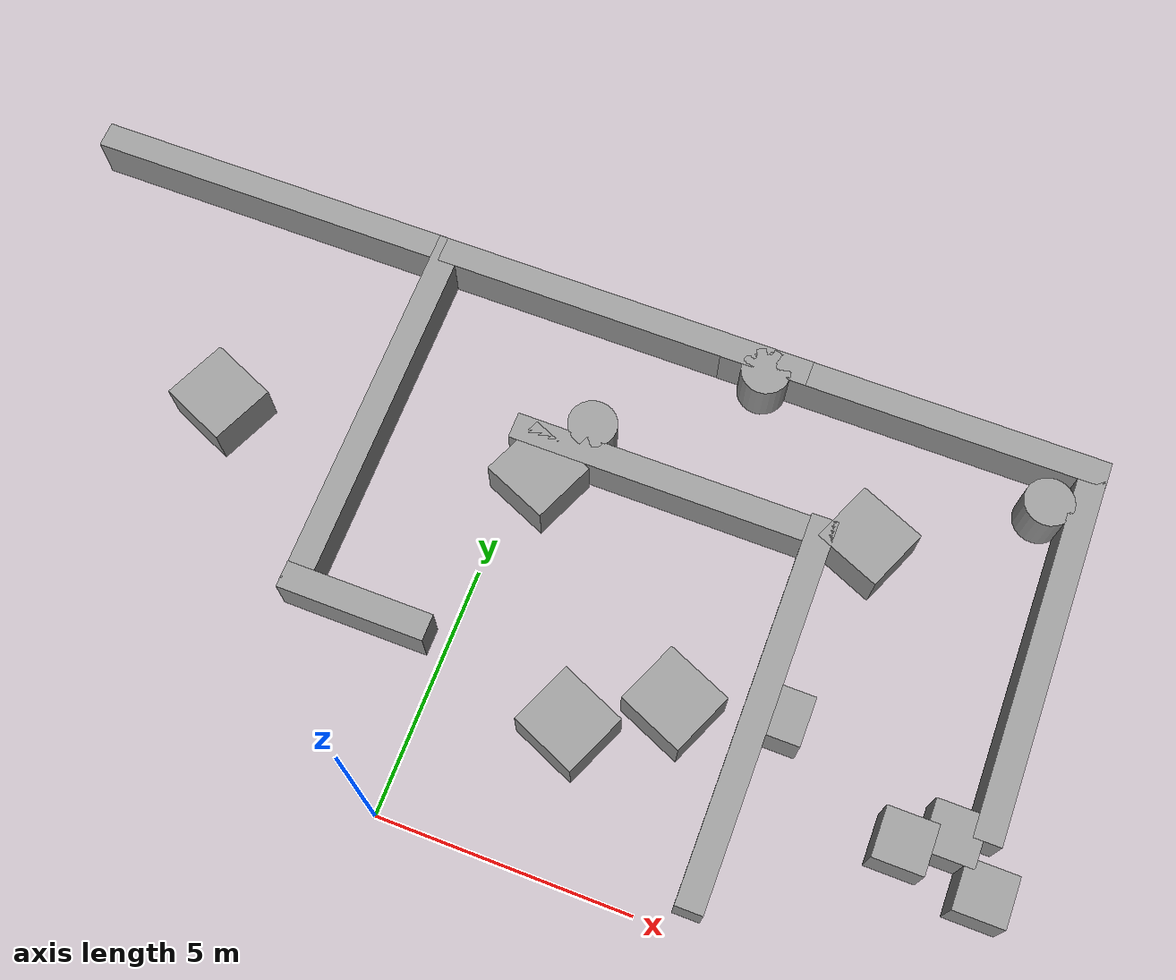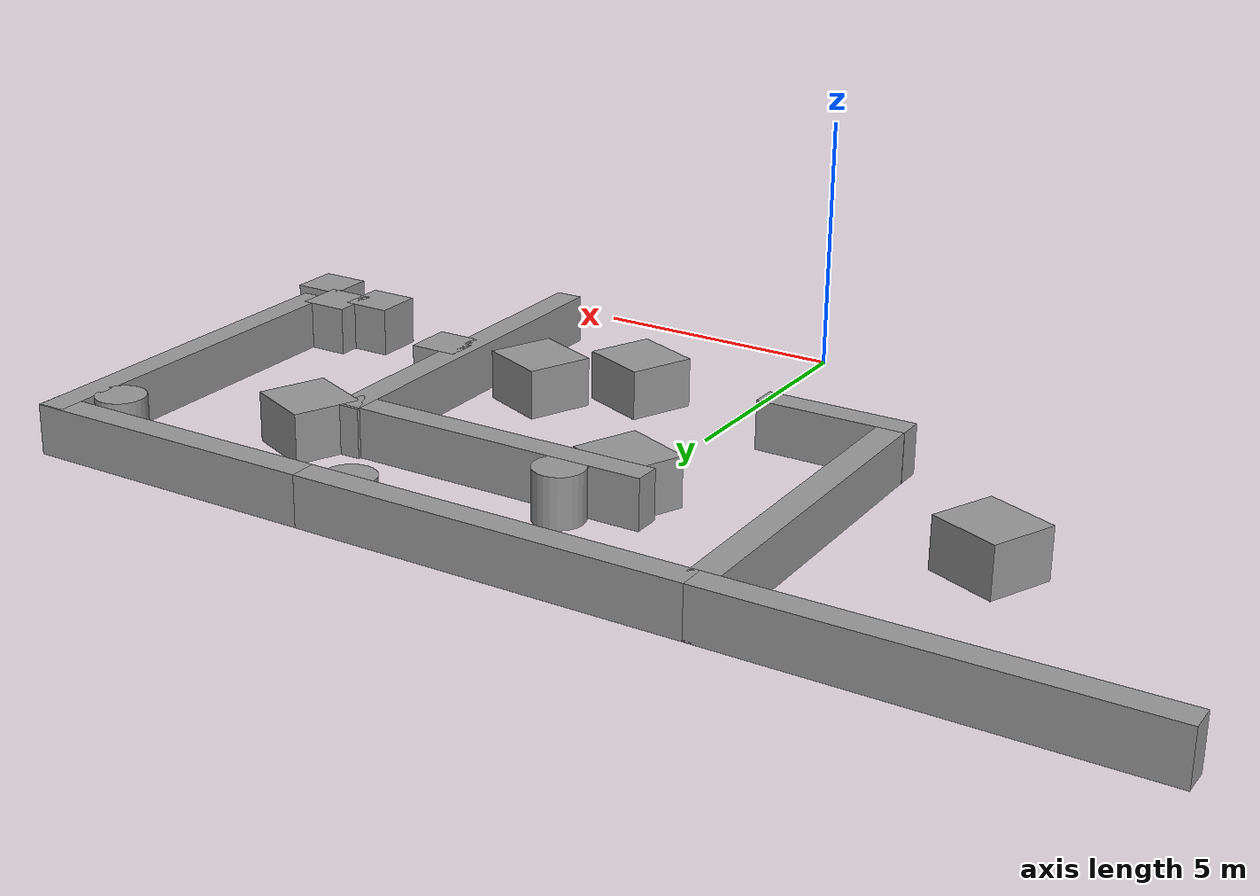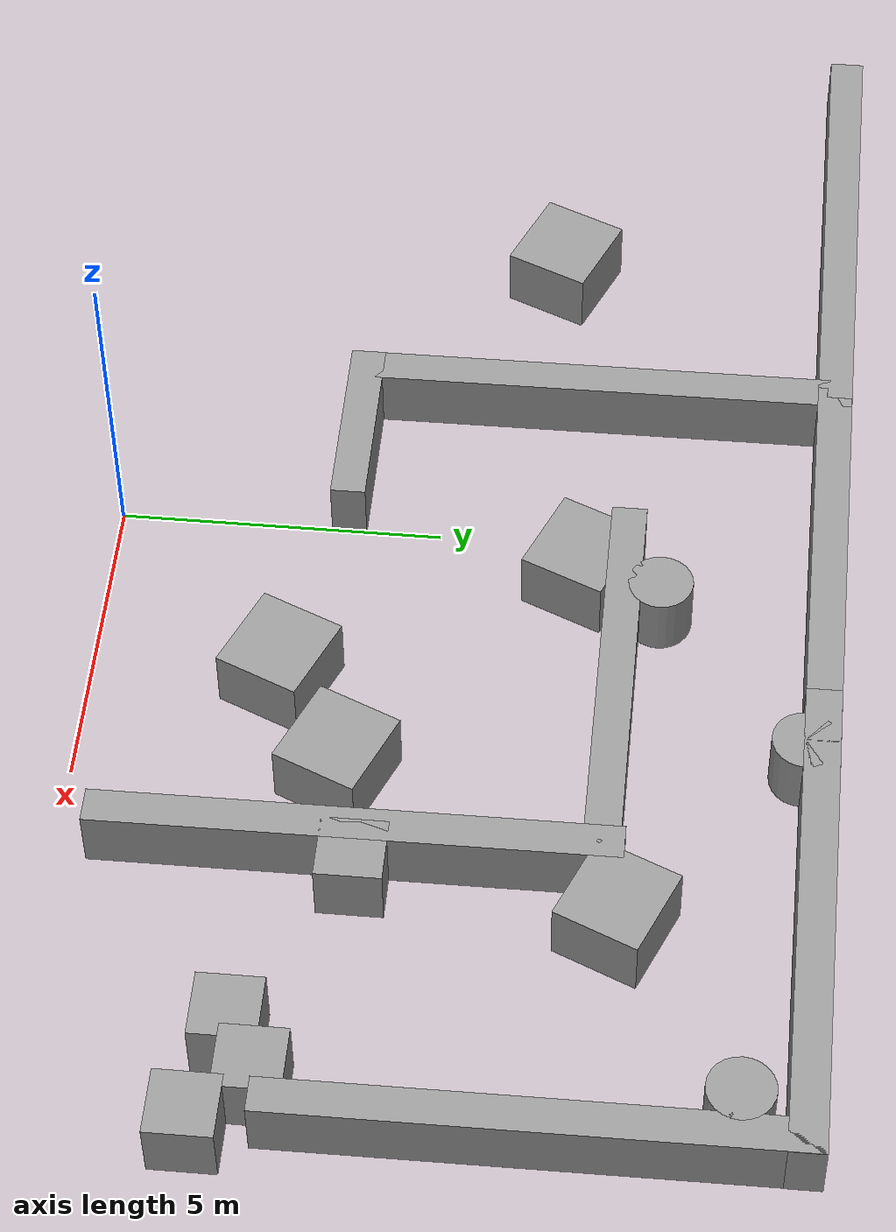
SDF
<sdf version="1.6">
 <model name="Maze01">
  <link name="link_11">
   <pose>6.31823 4.34711 9e-06 0 -0 0</pose>
   <inertial>
    <mass>1</mass>
    <inertia>
     <ixx>0.166667</ixx>
     <ixy>0</ixy>
     <ixz>0</ixz>
     <iyy>0.166667</iyy>
     <iyz>0</iyz>
     <izz>0.166667</izz>
    </inertia>
   </inertial>
   <visual name="visual">
    <geometry><box><size>1 1 1</size></box></geometry>
    <material>
     <lighting>1</lighting>
     <script><uri>file://media/materials/scripts/gazebo.material</uri><name>Gazebo/Grey</name></script>
     <ambient>0.3 0.3 0.3 1</ambient>
     <diffuse>0.7 0.7 0.7 1</diffuse>
     <specular>0.01 0.01 0.01 1</specular>
     <emissive>0 0 0 1</emissive>
    </material>
   </visual>
   <collision name="collision">
    <geometry><box><size>1 1 1</size></box></geometry>
    <surface>
     <friction>
      <ode><mu>1</mu><mu2>1</mu2><fdir1>0 0 0</fdir1><slip1>0</slip1><slip2>0</slip2></ode>
      <torsional>
       <coefficient>1</coefficient>
       <patch_radius>0</patch_radius>
       <surface_radius>0</surface_radius>
       <use_patch_radius>1</use_patch_radius>
       <ode><slip>0</slip></ode>
      </torsional>
     </friction>
     <bounce><restitution_coefficient>0</restitution_coefficient><threshold>1e+06</threshold></bounce>
     <contact>
      <collide_without_contact>0</collide_without_contact>
      <collide_without_contact_bitmask>1</collide_without_contact_bitmask>
      <collide_bitmask>1</collide_bitmask>
      <ode>
       <soft_cfm>0</soft_cfm>
       <soft_erp>0.2</soft_erp>
       <kp>1e+13</kp>
       <kd>1</kd>
       <max_vel>0.01</max_vel>
       <min_depth>0</min_depth>
      </ode>
      <bullet>
       <split_impulse>1</split_impulse>
       <split_impulse_penetration_threshold>-0.01</split_impulse_penetration_threshold>
       <soft_cfm>0</soft_cfm>
       <soft_erp>0.2</soft_erp>
       <kp>1e+13</kp>
       <kd>1</kd>
      </bullet>
     </contact>
    </surface>
   </collision>
  </link>
  <link name="link_14">
   <pose>10.7124 2.54643 9e-06 0 -0 0</pose>
   <inertial>
    <mass>1</mass>
    <inertia>
     <ixx>0.166667</ixx>
     <ixy>0</ixy>
     <ixz>0</ixz>
     <iyy>0.166667</iyy>
     <iyz>0</iyz>
     <izz>0.166667</izz>
    </inertia>
   </inertial>
   <visual name="visual">
    <geometry><box><size>1 1 1</size></box></geometry>
    <material>
     <lighting>1</lighting>
     <script><uri>file://media/materials/scripts/gazebo.material</uri><name>Gazebo/Grey</name></script>
     <ambient>0.3 0.3 0.3 1</ambient>
     <diffuse>0.7 0.7 0.7 1</diffuse>
     <specular>0.01 0.01 0.01 1</specular>
     <emissive>0 0 0 1</emissive>
    </material>
   </visual>
   <collision name="collision">
    <geometry><box><size>1 1 1</size></box></geometry>
    <surface>
     <friction>
      <ode><mu>1</mu><mu2>1</mu2><fdir1>0 0 0</fdir1><slip1>0</slip1><slip2>0</slip2></ode>
      <torsional>
       <coefficient>1</coefficient>
       <patch_radius>0</patch_radius>
       <surface_radius>0</surface_radius>
       <use_patch_radius>1</use_patch_radius>
       <ode><slip>0</slip></ode>
      </torsional>
     </friction>
     <bounce><restitution_coefficient>0</restitution_coefficient><threshold>1e+06</threshold></bounce>
     <contact>
      <collide_without_contact>0</collide_without_contact>
      <collide_without_contact_bitmask>1</collide_without_contact_bitmask>
      <collide_bitmask>1</collide_bitmask>
      <ode>
       <soft_cfm>0</soft_cfm>
       <soft_erp>0.2</soft_erp>
       <kp>1e+13</kp>
       <kd>1</kd>
       <max_vel>0.01</max_vel>
       <min_depth>0</min_depth>
      </ode>
      <bullet>
       <split_impulse>1</split_impulse>
       <split_impulse_penetration_threshold>-0.01</split_impulse_penetration_threshold>
       <soft_cfm>0</soft_cfm>
       <soft_erp>0.2</soft_erp>
       <kp>1e+13</kp>
       <kd>1</kd>
      </bullet>
     </contact>
    </surface>
   </collision>
  </link>
  <link name="link_4_clone_0_clone_clone_1_clone_0_clone_0">
   <pose>0.695253 11.0512 9e-06 0 -0 0</pose>
   <inertial>
    <mass>4.30693</mass>
    <inertia><ixx>0.46587</ixx><ixy>0</ixy><ixz>0</ixz><iyy>22.6991</iyy><iyz>0</iyz><izz>22.4471</izz></inertia>
   </inertial>
   <visual name="visual">
    <geometry><box><size>7.88951 0.545905 1</size></box></geometry>
    <material>
     <lighting>1</lighting>
     <script><uri>file://media/materials/scripts/gazebo.material</uri><name>Gazebo/Grey</name></script>
     <ambient>0.3 0.3 0.3 1</ambient>
     <diffuse>0.7 0.7 0.7 1</diffuse>
     <specular>0.01 0.01 0.01 1</specular>
     <emissive>0 0 0 1</emissive>
     <shader type="pixel"/>
    </material>
   </visual>
   <collision name="collision">
    <geometry><box><size>7.88951 0.545905 1</size></box></geometry>
    <surface>
     <friction>
      <ode><mu>1</mu><mu2>1</mu2><fdir1>0 0 0</fdir1><slip1>0</slip1><slip2>0</slip2></ode>
      <torsional>
       <coefficient>1</coefficient>
       <patch_radius>0</patch_radius>
       <surface_radius>0</surface_radius>
       <use_patch_radius>1</use_patch_radius>
       <ode><slip>0</slip></ode>
      </torsional>
     </friction>
     <bounce><restitution_coefficient>0</restitution_coefficient><threshold>1e+06</threshold></bounce>
     <contact>
      <collide_without_contact>0</collide_without_contact>
      <collide_without_contact_bitmask>1</collide_without_contact_bitmask>
      <collide_bitmask>1</collide_bitmask>
      <ode>
       <soft_cfm>0</soft_cfm>
       <soft_erp>0.2</soft_erp>
       <kp>1e+13</kp>
       <kd>1</kd>
       <max_vel>0.01</max_vel>
       <min_depth>0</min_depth>
      </ode>
      <bullet>
       <split_impulse>1</split_impulse>
       <split_impulse_penetration_threshold>-0.01</split_impulse_penetration_threshold>
       <soft_cfm>0</soft_cfm>
       <soft_erp>0.2</soft_erp>
       <kp>1e+13</kp>
       <kd>1</kd>
      </bullet>
     </contact>
    </surface>
   </collision>
  </link>
  <link name="partition_8">
   <pose>-7.0 11.0512 9e-06 0 -0 0</pose>
   <inertial>
    <mass>4.30693</mass>
    <inertia><ixx>0.46587</ixx><ixy>0</ixy><ixz>0</ixz><iyy>22.6991</iyy><iyz>0</iyz><izz>22.4471</izz></inertia>
   </inertial>
   <visual name="visual">
    <geometry><box><size>7.88951 0.545905 1</size></box></geometry>
    <material>
     <lighting>1</lighting>
     <script><uri>file://media/materials/scripts/gazebo.material</uri><name>Gazebo/Grey</name></script>
     <ambient>0.3 0.3 0.3 1</ambient>
     <diffuse>0.7 0.7 0.7 1</diffuse>
     <specular>0.01 0.01 0.01 1</specular>
     <emissive>0 0 0 1</emissive>
     <shader type="pixel"/>
    </material>
   </visual>
   <collision name="collision">
    <geometry><box><size>7.88951 0.545905 1</size></box></geometry>
    <surface>
     <friction>
      <ode><mu>1</mu><mu2>1</mu2><fdir1>0 0 0</fdir1><slip1>0</slip1><slip2>0</slip2></ode>
      <torsional>
       <coefficient>1</coefficient>
       <patch_radius>0</patch_radius>
       <surface_radius>0</surface_radius>
       <use_patch_radius>1</use_patch_radius>
       <ode><slip>0</slip></ode>
      </torsional>
     </friction>
     <bounce><restitution_coefficient>0</restitution_coefficient><threshold>1e+06</threshold></bounce>
     <contact>
      <collide_without_contact>0</collide_without_contact>
      <collide_without_contact_bitmask>1</collide_without_contact_bitmask>
      <collide_bitmask>1</collide_bitmask>
      <ode>
       <soft_cfm>0</soft_cfm>
       <soft_erp>0.2</soft_erp>
       <kp>1e+13</kp>
       <kd>1</kd>
       <max_vel>0.01</max_vel>
       <min_depth>0</min_depth>
      </ode>
      <bullet>
       <split_impulse>1</split_impulse>
       <split_impulse_penetration_threshold>-0.01</split_impulse_penetration_threshold>
       <soft_cfm>0</soft_cfm>
       <soft_erp>0.2</soft_erp>
       <kp>1e+13</kp>
       <kd>1</kd>
      </bullet>
     </contact>
    </surface>
   </collision>
  </link>
  <link name="link_4_clone_0_clone_clone_1_clone_0_clone_0_clone">
   <pose>6.79233 11.05 9e-06 0 -0 0</pose>
   <inertial>
    <mass>4.30693</mass>
    <inertia><ixx>0.46587</ixx><ixy>0</ixy><ixz>0</ixz><iyy>22.6991</iyy><iyz>0</iyz><izz>22.4471</izz></inertia>
   </inertial>
   <visual name="visual">
    <geometry><box><size>7.88951 0.545905 1</size></box></geometry>
    <material>
     <lighting>1</lighting>
     <script><uri>file://media/materials/scripts/gazebo.material</uri><name>Gazebo/Grey</name></script>
     <ambient>0.3 0.3 0.3 1</ambient>
     <diffuse>0.7 0.7 0.7 1</diffuse>
     <specular>0.01 0.01 0.01 1</specular>
     <emissive>0 0 0 1</emissive>
     <shader type="pixel"/>
    </material>
   </visual>
   <collision name="collision">
    <geometry><box><size>7.88951 0.545905 1</size></box></geometry>
    <surface>
     <friction>
      <ode><mu>1</mu><mu2>1</mu2><fdir1>0 0 0</fdir1><slip1>0</slip1><slip2>0</slip2></ode>
      <torsional>
       <coefficient>1</coefficient>
       <patch_radius>0</patch_radius>
       <surface_radius>0</surface_radius>
       <use_patch_radius>1</use_patch_radius>
       <ode><slip>0</slip></ode>
      </torsional>
     </friction>
     <bounce><restitution_coefficient>0</restitution_coefficient><threshold>1e+06</threshold></bounce>
     <contact>
      <collide_without_contact>0</collide_without_contact>
      <collide_without_contact_bitmask>1</collide_without_contact_bitmask>
      <collide_bitmask>1</collide_bitmask>
      <ode>
       <soft_cfm>0</soft_cfm>
       <soft_erp>0.2</soft_erp>
       <kp>1e+13</kp>
       <kd>1</kd>
       <max_vel>0.01</max_vel>
       <min_depth>0</min_depth>
      </ode>
      <bullet>
       <split_impulse>1</split_impulse>
       <split_impulse_penetration_threshold>-0.01</split_impulse_penetration_threshold>
       <soft_cfm>0</soft_cfm>
       <soft_erp>0.2</soft_erp>
       <kp>1e+13</kp>
       <kd>1</kd>
      </bullet>
     </contact>
    </surface>
   </collision>
  </link>
  <link name="link_4_clone_0_clone_clone_1_clone_clone">
   <pose>2.76705 7.92871 9e-06 0 -0 0</pose>
   <inertial>
    <mass>3.50538</mass>
    <inertia><ixx>0.379168</ixx><ixy>0</ixy><ixz>0</ixz><iyy>12.3366</iyy><iyz>0</iyz><izz>12.1315</izz></inertia>
   </inertial>
   <visual name="visual">
    <geometry><box><size>6.42122 0.545905 1</size></box></geometry>
    <material>
     <lighting>1</lighting>
     <script><uri>file://media/materials/scripts/gazebo.material</uri><name>Gazebo/Grey</name></script>
     <ambient>0.3 0.3 0.3 1</ambient>
     <diffuse>0.7 0.7 0.7 1</diffuse>
     <specular>0.01 0.01 0.01 1</specular>
     <emissive>0 0 0 1</emissive>
     <shader type="pixel"/>
    </material>
   </visual>
   <collision name="collision">
    <geometry><box><size>6.42122 0.545905 1</size></box></geometry>
    <surface>
     <friction>
      <ode><mu>1</mu><mu2>1</mu2><fdir1>0 0 0</fdir1><slip1>0</slip1><slip2>0</slip2></ode>
      <torsional>
       <coefficient>1</coefficient>
       <patch_radius>0</patch_radius>
       <surface_radius>0</surface_radius>
       <use_patch_radius>1</use_patch_radius>
       <ode><slip>0</slip></ode>
      </torsional>
     </friction>
     <bounce><restitution_coefficient>0</restitution_coefficient><threshold>1e+06</threshold></bounce>
     <contact>
      <collide_without_contact>0</collide_without_contact>
      <collide_without_contact_bitmask>1</collide_without_contact_bitmask>
      <collide_bitmask>1</collide_bitmask>
      <ode>
       <soft_cfm>0</soft_cfm>
       <soft_erp>0.2</soft_erp>
       <kp>1e+13</kp>
       <kd>1</kd>
       <max_vel>0.01</max_vel>
       <min_depth>0</min_depth>
      </ode>
      <bullet>
       <split_impulse>1</split_impulse>
       <split_impulse_penetration_threshold>-0.01</split_impulse_penetration_threshold>
       <soft_cfm>0</soft_cfm>
       <soft_erp>0.2</soft_erp>
       <kp>1e+13</kp>
       <kd>1</kd>
      </bullet>
     </contact>
    </surface>
   </collision>
  </link>
  <link name="new_wall">
   <pose>-1.9 3.51 9e-06 0 -0 0</pose>
   <inertial>
    <mass>3.50538</mass>
    <inertia><ixx>0.379168</ixx><ixy>0</ixy><ixz>0</ixz><iyy>12.3366</iyy><iyz>0</iyz><izz>12.1315</izz></inertia>
   </inertial>
   <visual name="visual">
    <geometry><box><size>3 0.545905 1</size></box></geometry>
    <material>
     <lighting>1</lighting>
     <script><uri>file://media/materials/scripts/gazebo.material</uri><name>Gazebo/Grey</name></script>
     <ambient>0.3 0.3 0.3 1</ambient>
     <diffuse>0.7 0.7 0.7 1</diffuse>
     <specular>0.01 0.01 0.01 1</specular>
     <emissive>0 0 0 1</emissive>
     <shader type="pixel"/>
    </material>
   </visual>
   <collision name="collision">
    <geometry><box><size>3 0.545905 1</size></box></geometry>
    <surface>
     <friction>
      <ode><mu>1</mu><mu2>1</mu2><fdir1>0 0 0</fdir1><slip1>0</slip1><slip2>0</slip2></ode>
      <torsional>
       <coefficient>1</coefficient>
       <patch_radius>0</patch_radius>
       <surface_radius>0</surface_radius>
       <use_patch_radius>1</use_patch_radius>
       <ode><slip>0</slip></ode>
      </torsional>
     </friction>
     <bounce><restitution_coefficient>0</restitution_coefficient><threshold>1e+06</threshold></bounce>
     <contact>
      <collide_without_contact>0</collide_without_contact>
      <collide_without_contact_bitmask>1</collide_without_contact_bitmask>
      <collide_bitmask>1</collide_bitmask>
      <ode>
       <soft_cfm>0</soft_cfm>
       <soft_erp>0.2</soft_erp>
       <kp>1e+13</kp>
       <kd>1</kd>
       <max_vel>0.01</max_vel>
       <min_depth>0</min_depth>
      </ode>
      <bullet>
       <split_impulse>1</split_impulse>
       <split_impulse_penetration_threshold>-0.01</split_impulse_penetration_threshold>
       <soft_cfm>0</soft_cfm>
       <soft_erp>0.2</soft_erp>
       <kp>1e+13</kp>
       <kd>1</kd>
      </bullet>
     </contact>
    </surface>
   </collision>
  </link>
  <link name="link_4_clone_1_clone_1_clone_0_clone_clone">
   <pose>10.4715 7.35 9e-06 0 0 -1.56693</pose>
   <inertial>
    <mass>4.30693</mass>
    <inertia><ixx>0.46587</ixx><ixy>0</ixy><ixz>0</ixz><iyy>22.6991</iyy><iyz>0</iyz><izz>22.4471</izz></inertia>
   </inertial>
   <visual name="visual">
    <geometry><box><size>7.88951 0.545905 1</size></box></geometry>
    <material>
     <lighting>1</lighting>
     <script><uri>file://media/materials/scripts/gazebo.material</uri><name>Gazebo/Grey</name></script>
     <ambient>0.3 0.3 0.3 1</ambient>
     <diffuse>0.7 0.7 0.7 1</diffuse>
     <specular>0.01 0.01 0.01 1</specular>
     <emissive>0 0 0 1</emissive>
     <shader type="pixel"/>
    </material>
   </visual>
   <collision name="collision">
    <geometry><box><size>7.88951 0.545905 1</size></box></geometry>
    <surface>
     <friction>
      <ode><mu>1</mu><mu2>1</mu2><fdir1>0 0 0</fdir1><slip1>0</slip1><slip2>0</slip2></ode>
      <torsional>
       <coefficient>1</coefficient>
       <patch_radius>0</patch_radius>
       <surface_radius>0</surface_radius>
       <use_patch_radius>1</use_patch_radius>
       <ode><slip>0</slip></ode>
      </torsional>
     </friction>
     <bounce><restitution_coefficient>0</restitution_coefficient><threshold>1e+06</threshold></bounce>
     <contact>
      <collide_without_contact>0</collide_without_contact>
      <collide_without_contact_bitmask>1</collide_without_contact_bitmask>
      <collide_bitmask>1</collide_bitmask>
      <ode>
       <soft_cfm>0</soft_cfm>
       <soft_erp>0.2</soft_erp>
       <kp>1e+13</kp>
       <kd>1</kd>
       <max_vel>0.01</max_vel>
       <min_depth>0</min_depth>
      </ode>
      <bullet>
       <split_impulse>1</split_impulse>
       <split_impulse_penetration_threshold>-0.01</split_impulse_penetration_threshold>
       <soft_cfm>0</soft_cfm>
       <soft_erp>0.2</soft_erp>
       <kp>1e+13</kp>
       <kd>1</kd>
      </bullet>
     </contact>
    </surface>
   </collision>
  </link>
  <link name="link_4_clone_1_clone_1_clone_1">
   <pose>5.888587 4.32024 9e-06 0 0 -1.56693</pose>
   <inertial>
    <mass>4.30693</mass>
    <inertia><ixx>0.46587</ixx><ixy>0</ixy><ixz>0</ixz><iyy>22.6991</iyy><iyz>0</iyz><izz>22.4471</izz></inertia>
   </inertial>
   <visual name="visual">
    <geometry><box><size>7.88951 0.545905 1</size></box></geometry>
    <material>
     <lighting>1</lighting>
     <script><uri>file://media/materials/scripts/gazebo.material</uri><name>Gazebo/Grey</name></script>
     <ambient>0.3 0.3 0.3 1</ambient>
     <diffuse>0.7 0.7 0.7 1</diffuse>
     <specular>0.01 0.01 0.01 1</specular>
     <emissive>0 0 0 1</emissive>
     <shader type="pixel"/>
    </material>
   </visual>
   <collision name="collision">
    <geometry><box><size>7.88951 0.545905 1</size></box></geometry>
    <surface>
     <friction>
      <ode><mu>1</mu><mu2>1</mu2><fdir1>0 0 0</fdir1><slip1>0</slip1><slip2>0</slip2></ode>
      <torsional>
       <coefficient>1</coefficient>
       <patch_radius>0</patch_radius>
       <surface_radius>0</surface_radius>
       <use_patch_radius>1</use_patch_radius>
       <ode><slip>0</slip></ode>
      </torsional>
     </friction>
     <bounce><restitution_coefficient>0</restitution_coefficient><threshold>1e+06</threshold></bounce>
     <contact>
      <collide_without_contact>0</collide_without_contact>
      <collide_without_contact_bitmask>1</collide_without_contact_bitmask>
      <collide_bitmask>1</collide_bitmask>
      <ode>
       <soft_cfm>0</soft_cfm>
       <soft_erp>0.2</soft_erp>
       <kp>1e+13</kp>
       <kd>1</kd>
       <max_vel>0.01</max_vel>
       <min_depth>0</min_depth>
      </ode>
      <bullet>
       <split_impulse>1</split_impulse>
       <split_impulse_penetration_threshold>-0.01</split_impulse_penetration_threshold>
       <soft_cfm>0</soft_cfm>
       <soft_erp>0.2</soft_erp>
       <kp>1e+13</kp>
       <kd>1</kd>
      </bullet>
     </contact>
    </surface>
   </collision>
  </link>
  <link name="link_4_clone_1_clone_1_clone_2">
   <pose>-3.1358 7.375 9e-06 0 0 -1.56693</pose>
   <inertial>
    <mass>4.30693</mass>
    <inertia><ixx>0.46587</ixx><ixy>0</ixy><ixz>0</ixz><iyy>22.6991</iyy><iyz>0</iyz><izz>22.4471</izz></inertia>
   </inertial>
   <visual name="visual">
    <geometry><box><size>7.88951 0.545905 1</size></box></geometry>
    <material>
     <lighting>1</lighting>
     <script><uri>file://media/materials/scripts/gazebo.material</uri><name>Gazebo/Grey</name></script>
     <ambient>0.3 0.3 0.3 1</ambient>
     <diffuse>0.7 0.7 0.7 1</diffuse>
     <specular>0.01 0.01 0.01 1</specular>
     <emissive>0 0 0 1</emissive>
     <shader type="pixel"/>
    </material>
   </visual>
   <collision name="collision">
    <geometry><box><size>7.88951 0.545905 1</size></box></geometry>
    <surface>
     <friction>
      <ode><mu>1</mu><mu2>1</mu2><fdir1>0 0 0</fdir1><slip1>0</slip1><slip2>0</slip2></ode>
      <torsional>
       <coefficient>1</coefficient>
       <patch_radius>0</patch_radius>
       <surface_radius>0</surface_radius>
       <use_patch_radius>1</use_patch_radius>
       <ode><slip>0</slip></ode>
      </torsional>
     </friction>
     <bounce><restitution_coefficient>0</restitution_coefficient><threshold>1e+06</threshold></bounce>
     <contact>
      <collide_without_contact>0</collide_without_contact>
      <collide_without_contact_bitmask>1</collide_without_contact_bitmask>
      <collide_bitmask>1</collide_bitmask>
      <ode>
       <soft_cfm>0</soft_cfm>
       <soft_erp>0.2</soft_erp>
       <kp>1e+13</kp>
       <kd>1</kd>
       <max_vel>0.01</max_vel>
       <min_depth>0</min_depth>
      </ode>
      <bullet>
       <split_impulse>1</split_impulse>
       <split_impulse_penetration_threshold>-0.01</split_impulse_penetration_threshold>
       <soft_cfm>0</soft_cfm>
       <soft_erp>0.2</soft_erp>
       <kp>1e+13</kp>
       <kd>1</kd>
      </bullet>
     </contact>
    </surface>
   </collision>
  </link>
  <link name="engine_2">
   <pose>-6.1551 6.5 9e-06 0 0 -0.406538</pose>
   <inertial>
    <mass>1.94722</mass>
    <inertia><ixx>0.463684</ixx><ixy>0</ixy><ixz>0</ixz><iyy>0.4935</iyy><iyz>0</iyz><izz>0.632648</izz></inertia>
   </inertial>
   <visual name="visual">
    <geometry><box><size>1.42873 1.36291 1</size></box></geometry>
    <material>
     <lighting>1</lighting>
     <script><uri>file://media/materials/scripts/gazebo.material</uri><name>Gazebo/Grey</name></script>
     <ambient>0.3 0.3 0.3 1</ambient>
     <diffuse>0.7 0.7 0.7 1</diffuse>
     <specular>0.01 0.01 0.01 1</specular>
     <emissive>0 0 0 1</emissive>
    </material>
   </visual>
   <collision name="collision">
    <geometry><box><size>1.42873 1.36291 1</size></box></geometry>
    <surface>
     <friction>
      <ode><mu>1</mu><mu2>1</mu2><fdir1>0 0 0</fdir1><slip1>0</slip1><slip2>0</slip2></ode>
      <torsional>
       <coefficient>1</coefficient>
       <patch_radius>0</patch_radius>
       <surface_radius>0</surface_radius>
       <use_patch_radius>1</use_patch_radius>
       <ode><slip>0</slip></ode>
      </torsional>
     </friction>
     <bounce><restitution_coefficient>0</restitution_coefficient><threshold>1e+06</threshold></bounce>
     <contact>
      <collide_without_contact>0</collide_without_contact>
      <collide_without_contact_bitmask>1</collide_without_contact_bitmask>
      <collide_bitmask>1</collide_bitmask>
      <ode>
       <soft_cfm>0</soft_cfm>
       <soft_erp>0.2</soft_erp>
       <kp>1e+13</kp>
       <kd>1</kd>
       <max_vel>0.01</max_vel>
       <min_depth>0</min_depth>
      </ode>
      <bullet>
       <split_impulse>1</split_impulse>
       <split_impulse_penetration_threshold>-0.01</split_impulse_penetration_threshold>
       <soft_cfm>0</soft_cfm>
       <soft_erp>0.2</soft_erp>
       <kp>1e+13</kp>
       <kd>1</kd>
      </bullet>
     </contact>
    </surface>
   </collision>
  </link>
  <link name="link_6_clone_clone">
   <pose>2.67865 2.83156 9e-06 0 0 -0.406538</pose>
   <inertial>
    <mass>1.94722</mass>
    <inertia><ixx>0.463684</ixx><ixy>0</ixy><ixz>0</ixz><iyy>0.4935</iyy><iyz>0</iyz><izz>0.632648</izz></inertia>
   </inertial>
   <visual name="visual">
    <geometry><box><size>1.42873 1.36291 1</size></box></geometry>
    <material>
     <lighting>1</lighting>
     <script><uri>file://media/materials/scripts/gazebo.material</uri><name>Gazebo/Grey</name></script>
     <ambient>0.3 0.3 0.3 1</ambient>
     <diffuse>0.7 0.7 0.7 1</diffuse>
     <specular>0.01 0.01 0.01 1</specular>
     <emissive>0 0 0 1</emissive>
     <shader type="pixel"/>
    </material>
   </visual>
   <collision name="collision">
    <geometry><box><size>1.42873 1.36291 1</size></box></geometry>
    <surface>
     <friction>
      <ode><mu>1</mu><mu2>1</mu2><fdir1>0 0 0</fdir1><slip1>0</slip1><slip2>0</slip2></ode>
      <torsional>
       <coefficient>1</coefficient>
       <patch_radius>0</patch_radius>
       <surface_radius>0</surface_radius>
       <use_patch_radius>1</use_patch_radius>
       <ode><slip>0</slip></ode>
      </torsional>
     </friction>
     <bounce><restitution_coefficient>0</restitution_coefficient><threshold>1e+06</threshold></bounce>
     <contact>
      <collide_without_contact>0</collide_without_contact>
      <collide_without_contact_bitmask>1</collide_without_contact_bitmask>
      <collide_bitmask>1</collide_bitmask>
      <ode>
       <soft_cfm>0</soft_cfm>
       <soft_erp>0.2</soft_erp>
       <kp>1e+13</kp>
       <kd>1</kd>
       <max_vel>0.01</max_vel>
       <min_depth>0</min_depth>
      </ode>
      <bullet>
       <split_impulse>1</split_impulse>
       <split_impulse_penetration_threshold>-0.01</split_impulse_penetration_threshold>
       <soft_cfm>0</soft_cfm>
       <soft_erp>0.2</soft_erp>
       <kp>1e+13</kp>
       <kd>1</kd>
      </bullet>
     </contact>
    </surface>
   </collision>
  </link>
  <link name="link_6_clone_clone_0">
   <pose>4.37408 3.90111 9e-06 0 0 -0.406538</pose>
   <inertial>
    <mass>1.94722</mass>
    <inertia><ixx>0.463684</ixx><ixy>0</ixy><ixz>0</ixz><iyy>0.4935</iyy><iyz>0</iyz><izz>0.632648</izz></inertia>
   </inertial>
   <visual name="visual">
    <geometry><box><size>1.42873 1.36291 1</size></box></geometry>
    <material>
     <lighting>1</lighting>
     <script><uri>file://media/materials/scripts/gazebo.material</uri><name>Gazebo/Grey</name></script>
     <ambient>0.3 0.3 0.3 1</ambient>
     <diffuse>0.7 0.7 0.7 1</diffuse>
     <specular>0.01 0.01 0.01 1</specular>
     <emissive>0 0 0 1</emissive>
     <shader type="pixel"/>
    </material>
   </visual>
   <collision name="collision">
    <geometry><box><size>1.42873 1.36291 1</size></box></geometry>
    <surface>
     <friction>
      <ode><mu>1</mu><mu2>1</mu2><fdir1>0 0 0</fdir1><slip1>0</slip1><slip2>0</slip2></ode>
      <torsional>
       <coefficient>1</coefficient>
       <patch_radius>0</patch_radius>
       <surface_radius>0</surface_radius>
       <use_patch_radius>1</use_patch_radius>
       <ode><slip>0</slip></ode>
      </torsional>
     </friction>
     <bounce><restitution_coefficient>0</restitution_coefficient><threshold>1e+06</threshold></bounce>
     <contact>
      <collide_without_contact>0</collide_without_contact>
      <collide_without_contact_bitmask>1</collide_without_contact_bitmask>
      <collide_bitmask>1</collide_bitmask>
      <ode>
       <soft_cfm>0</soft_cfm>
       <soft_erp>0.2</soft_erp>
       <kp>1e+13</kp>
       <kd>1</kd>
       <max_vel>0.01</max_vel>
       <min_depth>0</min_depth>
      </ode>
      <bullet>
       <split_impulse>1</split_impulse>
       <split_impulse_penetration_threshold>-0.01</split_impulse_penetration_threshold>
       <soft_cfm>0</soft_cfm>
       <soft_erp>0.2</soft_erp>
       <kp>1e+13</kp>
       <kd>1</kd>
      </bullet>
     </contact>
    </surface>
   </collision>
  </link>
  <link name="link_6_clone_clone_0_clone">
   <pose>0.353494 7.24728 9e-06 0 0 -0.406538</pose>
   <inertial>
    <mass>1.94722</mass>
    <inertia><ixx>0.463684</ixx><ixy>0</ixy><ixz>0</ixz><iyy>0.4935</iyy><iyz>0</iyz><izz>0.632648</izz></inertia>
   </inertial>
   <visual name="visual">
    <geometry><box><size>1.42873 1.36291 1</size></box></geometry>
    <material>
     <lighting>1</lighting>
     <script><uri>file://media/materials/scripts/gazebo.material</uri><name>Gazebo/Grey</name></script>
     <ambient>0.3 0.3 0.3 1</ambient>
     <diffuse>0.7 0.7 0.7 1</diffuse>
     <specular>0.01 0.01 0.01 1</specular>
     <emissive>0 0 0 1</emissive>
     <shader type="pixel"/>
    </material>
   </visual>
   <collision name="collision">
    <geometry><box><size>1.42873 1.36291 1</size></box></geometry>
    <surface>
     <friction>
      <ode><mu>1</mu><mu2>1</mu2><fdir1>0 0 0</fdir1><slip1>0</slip1><slip2>0</slip2></ode>
      <torsional>
       <coefficient>1</coefficient>
       <patch_radius>0</patch_radius>
       <surface_radius>0</surface_radius>
       <use_patch_radius>1</use_patch_radius>
       <ode><slip>0</slip></ode>
      </torsional>
     </friction>
     <bounce><restitution_coefficient>0</restitution_coefficient><threshold>1e+06</threshold></bounce>
     <contact>
      <collide_without_contact>0</collide_without_contact>
      <collide_without_contact_bitmask>1</collide_without_contact_bitmask>
      <collide_bitmask>1</collide_bitmask>
      <ode>
       <soft_cfm>0</soft_cfm>
       <soft_erp>0.2</soft_erp>
       <kp>1e+13</kp>
       <kd>1</kd>
       <max_vel>0.01</max_vel>
       <min_depth>0</min_depth>
      </ode>
      <bullet>
       <split_impulse>1</split_impulse>
       <split_impulse_penetration_threshold>-0.01</split_impulse_penetration_threshold>
       <soft_cfm>0</soft_cfm>
       <soft_erp>0.2</soft_erp>
       <kp>1e+13</kp>
       <kd>1</kd>
      </bullet>
     </contact>
    </surface>
   </collision>
  </link>
  <link name="link_6_clone_clone_0_clone_clone">
   <pose>6.7785 8.2182 9e-06 0 0 -0.406538</pose>
   <inertial>
    <mass>1.94722</mass>
    <inertia><ixx>0.463684</ixx><ixy>0</ixy><ixz>0</ixz><iyy>0.4935</iyy><iyz>0</iyz><izz>0.632648</izz></inertia>
   </inertial>
   <visual name="visual">
    <geometry><box><size>1.42873 1.36291 1</size></box></geometry>
    <material>
     <lighting>1</lighting>
     <script><uri>file://media/materials/scripts/gazebo.material</uri><name>Gazebo/Grey</name></script>
     <ambient>0.3 0.3 0.3 1</ambient>
     <diffuse>0.7 0.7 0.7 1</diffuse>
     <specular>0.01 0.01 0.01 1</specular>
     <emissive>0 0 0 1</emissive>
     <shader type="pixel"/>
    </material>
   </visual>
   <collision name="collision">
    <geometry><box><size>1.42873 1.36291 1</size></box></geometry>
    <surface>
     <friction>
      <ode><mu>1</mu><mu2>1</mu2><fdir1>0 0 0</fdir1><slip1>0</slip1><slip2>0</slip2></ode>
      <torsional>
       <coefficient>1</coefficient>
       <patch_radius>0</patch_radius>
       <surface_radius>0</surface_radius>
       <use_patch_radius>1</use_patch_radius>
       <ode><slip>0</slip></ode>
      </torsional>
     </friction>
     <bounce><restitution_coefficient>0</restitution_coefficient><threshold>1e+06</threshold></bounce>
     <contact>
      <collide_without_contact>0</collide_without_contact>
      <collide_without_contact_bitmask>1</collide_without_contact_bitmask>
      <collide_bitmask>1</collide_bitmask>
      <ode>
       <soft_cfm>0</soft_cfm>
       <soft_erp>0.2</soft_erp>
       <kp>1e+13</kp>
       <kd>1</kd>
       <max_vel>0.01</max_vel>
       <min_depth>0</min_depth>
      </ode>
      <bullet>
       <split_impulse>1</split_impulse>
       <split_impulse_penetration_threshold>-0.01</split_impulse_penetration_threshold>
       <soft_cfm>0</soft_cfm>
       <soft_erp>0.2</soft_erp>
       <kp>1e+13</kp>
       <kd>1</kd>
      </bullet>
     </contact>
    </surface>
   </collision>
  </link>
  <link name="link_7">
   <pose>9.80695 10.1149 9e-06 0 -0 0</pose>
   <inertial>
    <mass>1</mass>
    <inertia><ixx>0.145833</ixx><ixy>0</ixy><ixz>0</ixz><iyy>0.145833</iyy><iyz>0</iyz><izz>0.125</izz></inertia>
   </inertial>
   <visual name="visual">
    <geometry><cylinder><radius>0.5</radius><length>1</length></cylinder></geometry>
    <material>
     <lighting>1</lighting>
     <script><uri>file://media/materials/scripts/gazebo.material</uri><name>Gazebo/Grey</name></script>
     <ambient>0.3 0.3 0.3 1</ambient>
     <diffuse>0.7 0.7 0.7 1</diffuse>
     <specular>0.01 0.01 0.01 1</specular>
     <emissive>0 0 0 1</emissive>
    </material>
   </visual>
   <collision name="collision">
    <geometry><cylinder><radius>0.5</radius><length>1</length></cylinder></geometry>
    <surface>
     <friction>
      <ode><mu>1</mu><mu2>1</mu2><fdir1>0 0 0</fdir1><slip1>0</slip1><slip2>0</slip2></ode>
      <torsional>
       <coefficient>1</coefficient>
       <patch_radius>0</patch_radius>
       <surface_radius>0</surface_radius>
       <use_patch_radius>1</use_patch_radius>
       <ode><slip>0</slip></ode>
      </torsional>
     </friction>
     <bounce><restitution_coefficient>0</restitution_coefficient><threshold>1e+06</threshold></bounce>
     <contact>
      <collide_without_contact>0</collide_without_contact>
      <collide_without_contact_bitmask>1</collide_without_contact_bitmask>
      <collide_bitmask>1</collide_bitmask>
      <ode>
       <soft_cfm>0</soft_cfm>
       <soft_erp>0.2</soft_erp>
       <kp>1e+13</kp>
       <kd>1</kd>
       <max_vel>0.01</max_vel>
       <min_depth>0</min_depth>
      </ode>
      <bullet>
       <split_impulse>1</split_impulse>
       <split_impulse_penetration_threshold>-0.01</split_impulse_penetration_threshold>
       <soft_cfm>0</soft_cfm>
       <soft_erp>0.2</soft_erp>
       <kp>1e+13</kp>
       <kd>1</kd>
      </bullet>
     </contact>
    </surface>
   </collision>
  </link>
  <link name="link_7_clone_1">
   <pose>3.806950 10.80 9e-06 0 -0 0</pose>
   <inertial>
    <mass>1</mass>
    <inertia><ixx>0.145833</ixx><ixy>0</ixy><ixz>0</ixz><iyy>0.145833</iyy><iyz>0</iyz><izz>0.125</izz></inertia>
   </inertial>
   <visual name="visual">
    <geometry><cylinder><radius>0.5</radius><length>1</length></cylinder></geometry>
    <material>
     <lighting>1</lighting>
     <script><uri>file://media/materials/scripts/gazebo.material</uri><name>Gazebo/Grey</name></script>
     <ambient>0.3 0.3 0.3 1</ambient>
     <diffuse>0.7 0.7 0.7 1</diffuse>
     <specular>0.01 0.01 0.01 1</specular>
     <emissive>0 0 0 1</emissive>
    </material>
   </visual>
   <collision name="collision">
    <geometry><cylinder><radius>0.5</radius><length>1</length></cylinder></geometry>
    <surface>
     <friction>
      <ode><mu>1</mu><mu2>1</mu2><fdir1>0 0 0</fdir1><slip1>0</slip1><slip2>0</slip2></ode>
      <torsional>
       <coefficient>1</coefficient>
       <patch_radius>0</patch_radius>
       <surface_radius>0</surface_radius>
       <use_patch_radius>1</use_patch_radius>
       <ode><slip>0</slip></ode>
      </torsional>
     </friction>
     <bounce><restitution_coefficient>0</restitution_coefficient><threshold>1e+06</threshold></bounce>
     <contact>
      <collide_without_contact>0</collide_without_contact>
      <collide_without_contact_bitmask>1</collide_without_contact_bitmask>
      <collide_bitmask>1</collide_bitmask>
      <ode>
       <soft_cfm>0</soft_cfm>
       <soft_erp>0.2</soft_erp>
       <kp>1e+13</kp>
       <kd>1</kd>
       <max_vel>0.01</max_vel>
       <min_depth>0</min_depth>
      </ode>
      <bullet>
       <split_impulse>1</split_impulse>
       <split_impulse_penetration_threshold>-0.01</split_impulse_penetration_threshold>
       <soft_cfm>0</soft_cfm>
       <soft_erp>0.2</soft_erp>
       <kp>1e+13</kp>
       <kd>1</kd>
      </bullet>
     </contact>
    </surface>
   </collision>
  </link>
  <link name="link_7_clone_2">
   <pose>1.0 8.5 9e-06 0 -0 0</pose>
   <inertial>
    <mass>1</mass>
    <inertia><ixx>0.145833</ixx><ixy>0</ixy><ixz>0</ixz><iyy>0.145833</iyy><iyz>0</iyz><izz>0.125</izz></inertia>
   </inertial>
   <visual name="visual">
    <geometry><cylinder><radius>0.5</radius><length>1</length></cylinder></geometry>
    <material>
     <lighting>1</lighting>
     <script><uri>file://media/materials/scripts/gazebo.material</uri><name>Gazebo/Grey</name></script>
     <ambient>0.3 0.3 0.3 1</ambient>
     <diffuse>0.7 0.7 0.7 1</diffuse>
     <specular>0.01 0.01 0.01 1</specular>
     <emissive>0 0 0 1</emissive>
    </material>
   </visual>
   <collision name="collision">
    <geometry><cylinder><radius>0.5</radius><length>1</length></cylinder></geometry>
    <surface>
     <friction>
      <ode><mu>1</mu><mu2>1</mu2><fdir1>0 0 0</fdir1><slip1>0</slip1><slip2>0</slip2></ode>
      <torsional>
       <coefficient>1</coefficient>
       <patch_radius>0</patch_radius>
       <surface_radius>0</surface_radius>
       <use_patch_radius>1</use_patch_radius>
       <ode><slip>0</slip></ode>
      </torsional>
     </friction>
     <bounce><restitution_coefficient>0</restitution_coefficient><threshold>1e+06</threshold></bounce>
     <contact>
      <collide_without_contact>0</collide_without_contact>
      <collide_without_contact_bitmask>1</collide_without_contact_bitmask>
      <collide_bitmask>1</collide_bitmask>
      <ode>
       <soft_cfm>0</soft_cfm>
       <soft_erp>0.2</soft_erp>
       <kp>1e+13</kp>
       <kd>1</kd>
       <max_vel>0.01</max_vel>
       <min_depth>0</min_depth>
      </ode>
      <bullet>
       <split_impulse>1</split_impulse>
       <split_impulse_penetration_threshold>-0.01</split_impulse_penetration_threshold>
       <soft_cfm>0</soft_cfm>
       <soft_erp>0.2</soft_erp>
       <kp>1e+13</kp>
       <kd>1</kd>
      </bullet>
     </contact>
    </surface>
   </collision>
  </link>
  <link name="link_8">
   <pose>9.90915 3.36462 9e-06 0 -0 0</pose>
   <inertial>
    <mass>1</mass>
    <inertia>
     <ixx>0.166667</ixx>
     <ixy>0</ixy>
     <ixz>0</ixz>
     <iyy>0.166667</iyy>
     <iyz>0</iyz>
     <izz>0.166667</izz>
    </inertia>
   </inertial>
   <visual name="visual">
    <geometry><box><size>1 1 1</size></box></geometry>
    <material>
     <lighting>1</lighting>
     <script><uri>file://media/materials/scripts/gazebo.material</uri><name>Gazebo/Grey</name></script>
     <ambient>0.3 0.3 0.3 1</ambient>
     <diffuse>0.7 0.7 0.7 1</diffuse>
     <specular>0.01 0.01 0.01 1</specular>
     <emissive>0 0 0 1</emissive>
    </material>
   </visual>
   <collision name="collision">
    <geometry><box><size>1 1 1</size></box></geometry>
    <surface>
     <friction>
      <ode><mu>1</mu><mu2>1</mu2><fdir1>0 0 0</fdir1><slip1>0</slip1><slip2>0</slip2></ode>
      <torsional>
       <coefficient>1</coefficient>
       <patch_radius>0</patch_radius>
       <surface_radius>0</surface_radius>
       <use_patch_radius>1</use_patch_radius>
       <ode><slip>0</slip></ode>
      </torsional>
     </friction>
     <bounce><restitution_coefficient>0</restitution_coefficient><threshold>1e+06</threshold></bounce>
     <contact>
      <collide_without_contact>0</collide_without_contact>
      <collide_without_contact_bitmask>1</collide_without_contact_bitmask>
      <collide_bitmask>1</collide_bitmask>
      <ode>
       <soft_cfm>0</soft_cfm>
       <soft_erp>0.2</soft_erp>
       <kp>1e+13</kp>
       <kd>1</kd>
       <max_vel>0.01</max_vel>
       <min_depth>0</min_depth>
      </ode>
      <bullet>
       <split_impulse>1</split_impulse>
       <split_impulse_penetration_threshold>-0.01</split_impulse_penetration_threshold>
       <soft_cfm>0</soft_cfm>
       <soft_erp>0.2</soft_erp>
       <kp>1e+13</kp>
       <kd>1</kd>
      </bullet>
     </contact>
    </surface>
   </collision>
  </link>
  <link name="link_9">
   <pose>9.11198 2.92169 9e-06 0 -0 0</pose>
   <inertial>
    <mass>1</mass>
    <inertia>
     <ixx>0.166667</ixx>
     <ixy>0</ixy>
     <ixz>0</ixz>
     <iyy>0.166667</iyy>
     <iyz>0</iyz>
     <izz>0.166667</izz>
    </inertia>
   </inertial>
   <visual name="visual">
    <geometry><box><size>1 1 1</size></box></geometry>
    <material>
     <lighting>1</lighting>
     <script><uri>file://media/materials/scripts/gazebo.material</uri><name>Gazebo/Grey</name></script>
     <ambient>0.3 0.3 0.3 1</ambient>
     <diffuse>0.7 0.7 0.7 1</diffuse>
     <specular>0.01 0.01 0.01 1</specular>
     <emissive>0 0 0 1</emissive>
    </material>
   </visual>
   <collision name="collision">
    <geometry><box><size>1 1 1</size></box></geometry>
    <surface>
     <friction>
      <ode><mu>1</mu><mu2>1</mu2><fdir1>0 0 0</fdir1><slip1>0</slip1><slip2>0</slip2></ode>
      <torsional>
       <coefficient>1</coefficient>
       <patch_radius>0</patch_radius>
       <surface_radius>0</surface_radius>
       <use_patch_radius>1</use_patch_radius>
       <ode><slip>0</slip></ode>
      </torsional>
     </friction>
     <bounce><restitution_coefficient>0</restitution_coefficient><threshold>1e+06</threshold></bounce>
     <contact>
      <collide_without_contact>0</collide_without_contact>
      <collide_without_contact_bitmask>1</collide_without_contact_bitmask>
      <collide_bitmask>1</collide_bitmask>
      <ode>
       <soft_cfm>0</soft_cfm>
       <soft_erp>0.2</soft_erp>
       <kp>1e+13</kp>
       <kd>1</kd>
       <max_vel>0.01</max_vel>
       <min_depth>0</min_depth>
      </ode>
      <bullet>
       <split_impulse>1</split_impulse>
       <split_impulse_penetration_threshold>-0.01</split_impulse_penetration_threshold>
       <soft_cfm>0</soft_cfm>
       <soft_erp>0.2</soft_erp>
       <kp>1e+13</kp>
       <kd>1</kd>
      </bullet>
     </contact>
    </surface>
   </collision>
  </link>
  <static>0</static>
 </model>
</sdf>
